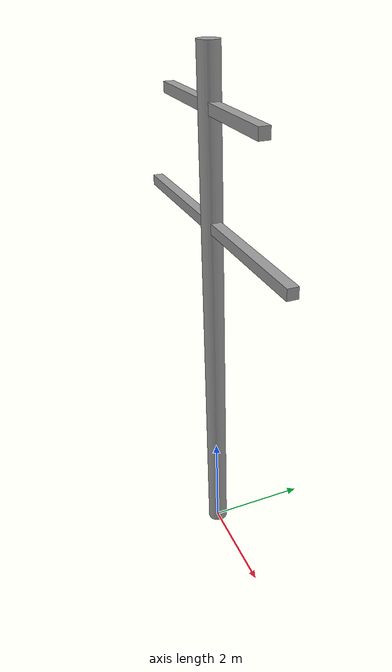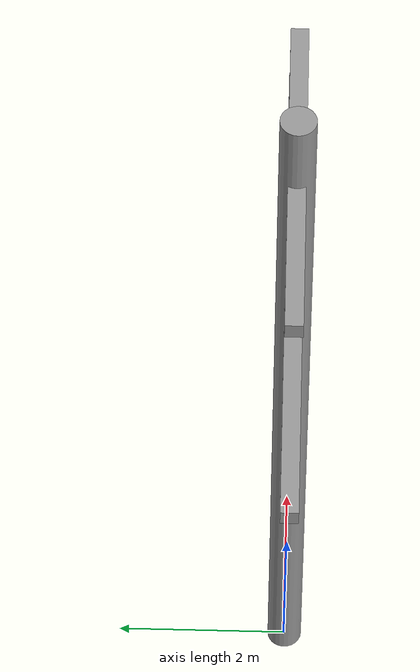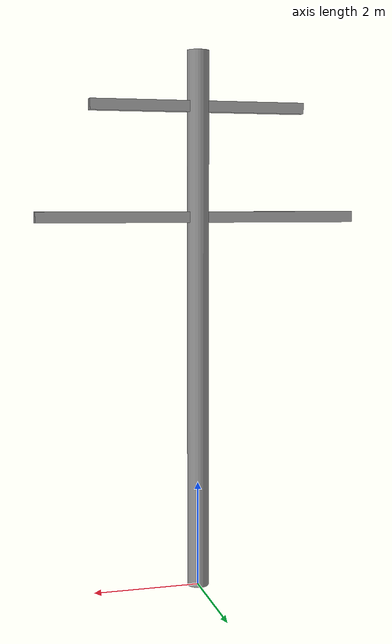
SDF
<?xml version="1.0" ?>
<sdf version="1.6">
  <model name="power_tower">
    <static>true</static>
    <link name="link">
      <!-- PHYSICS/COLLISION OPTIMIZATION: Use a single simple Cylinder for collision -->
      <collision name="collision">
        <pose>0 0 5 0 0 0</pose>
        <geometry><cylinder><radius>0.4</radius><length>10</length></cylinder></geometry>
      </collision>

      <!-- VISUAL: A lattice tower look -->
      <visual name="main_post">
        <pose>0 0 5 0 0 0</pose>
        <geometry><cylinder><radius>0.2</radius><length>10</length></cylinder></geometry>
        <material><script><uri>file://media/materials/scripts/gazebo.material</uri><name>Gazebo/Grey</name></script></material>
      </visual>
      <visual name="arm_top">
        <pose>0 0 9 0 1.5708 0</pose>
        <geometry><box><size>0.2 0.2 4</size></box></geometry>
        <material><script><uri>file://media/materials/scripts/gazebo.material</uri><name>Gazebo/Grey</name></script></material>
      </visual>
      <visual name="arm_middle">
        <pose>0 0 7 0 1.5708 0</pose>
        <geometry><box><size>0.2 0.2 6</size></box></geometry>
        <material><script><uri>file://media/materials/scripts/gazebo.material</uri><name>Gazebo/Grey</name></script></material>
      </visual>
    </link>
  </model>
</sdf>
